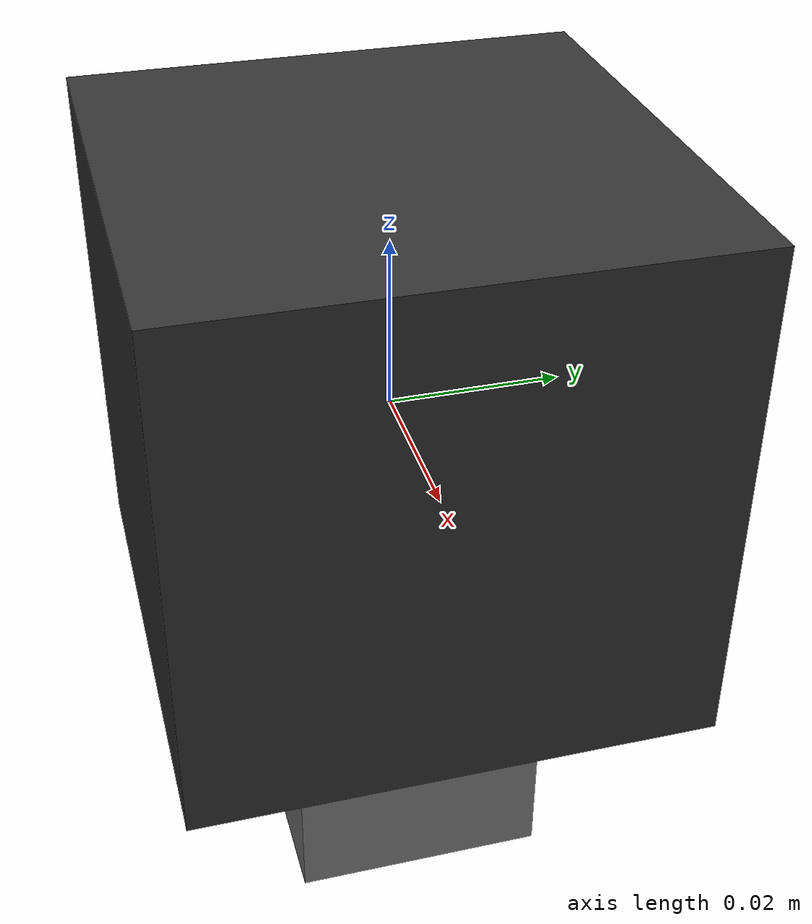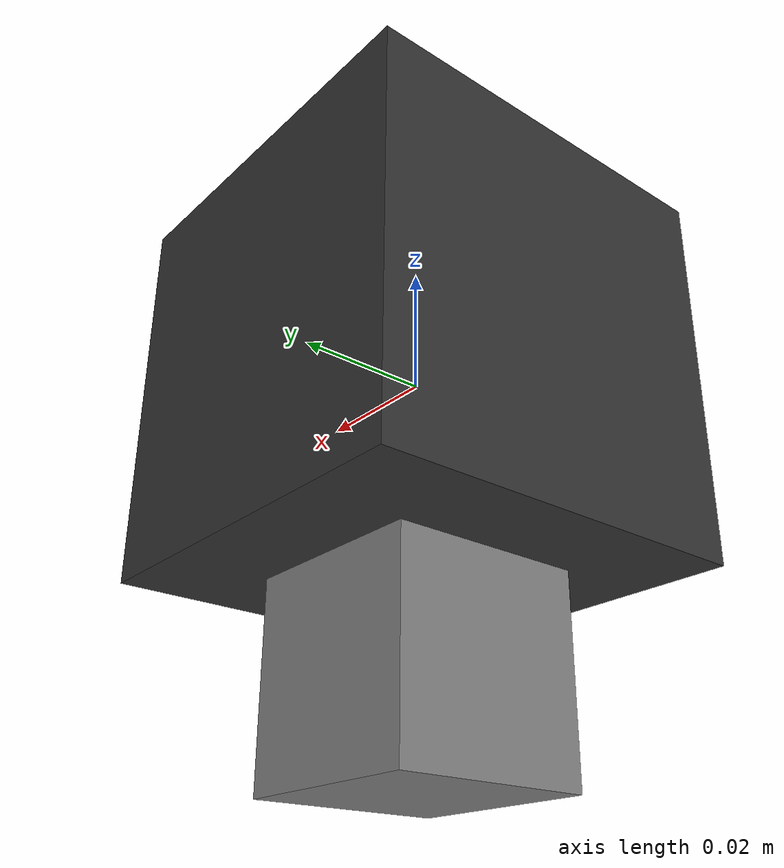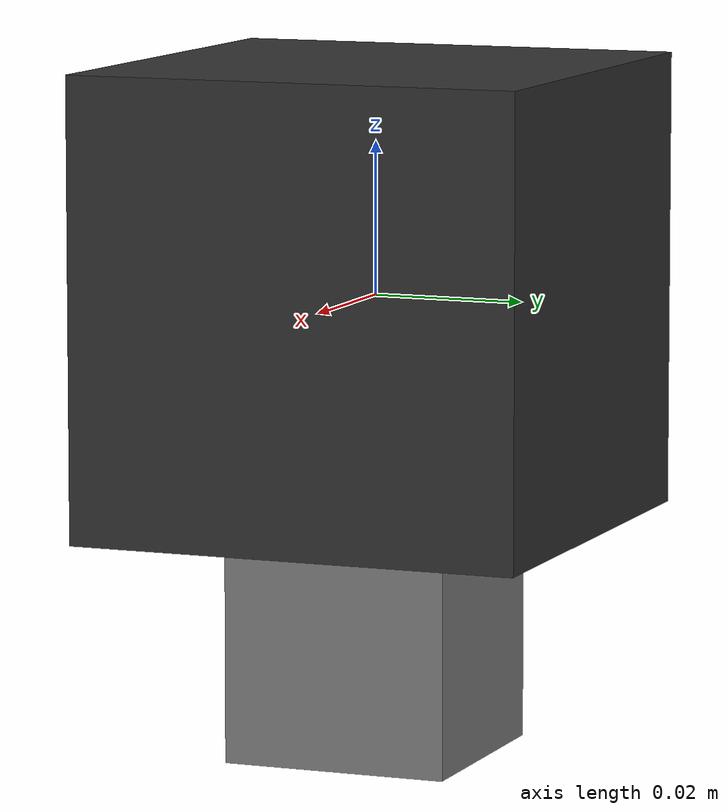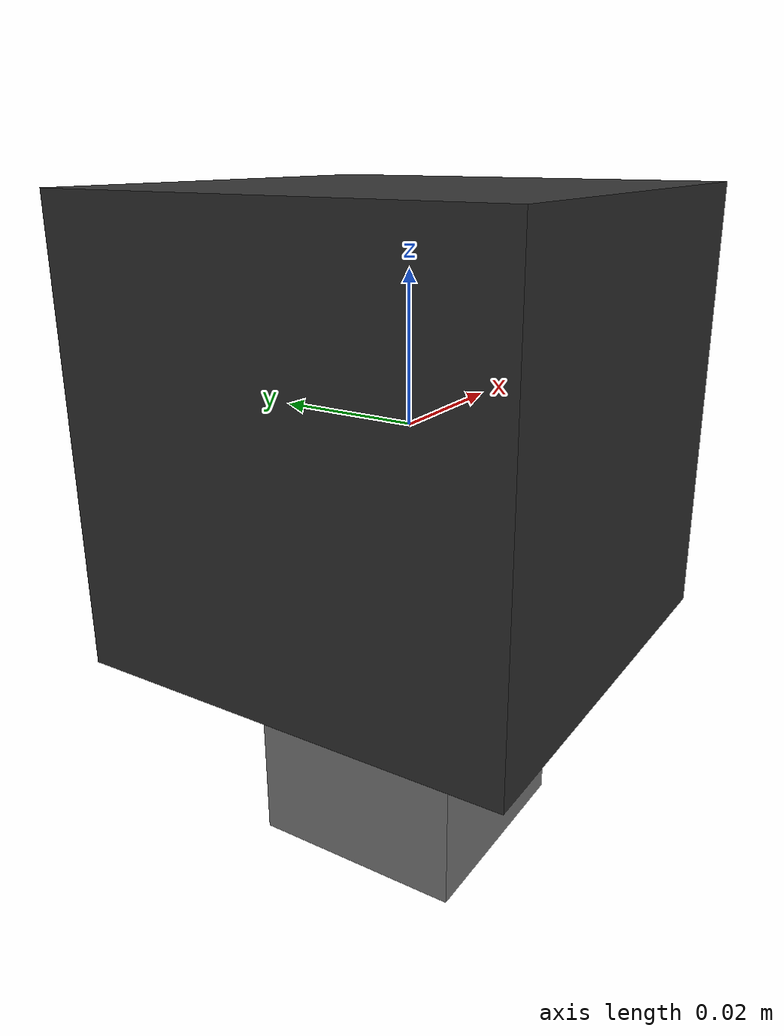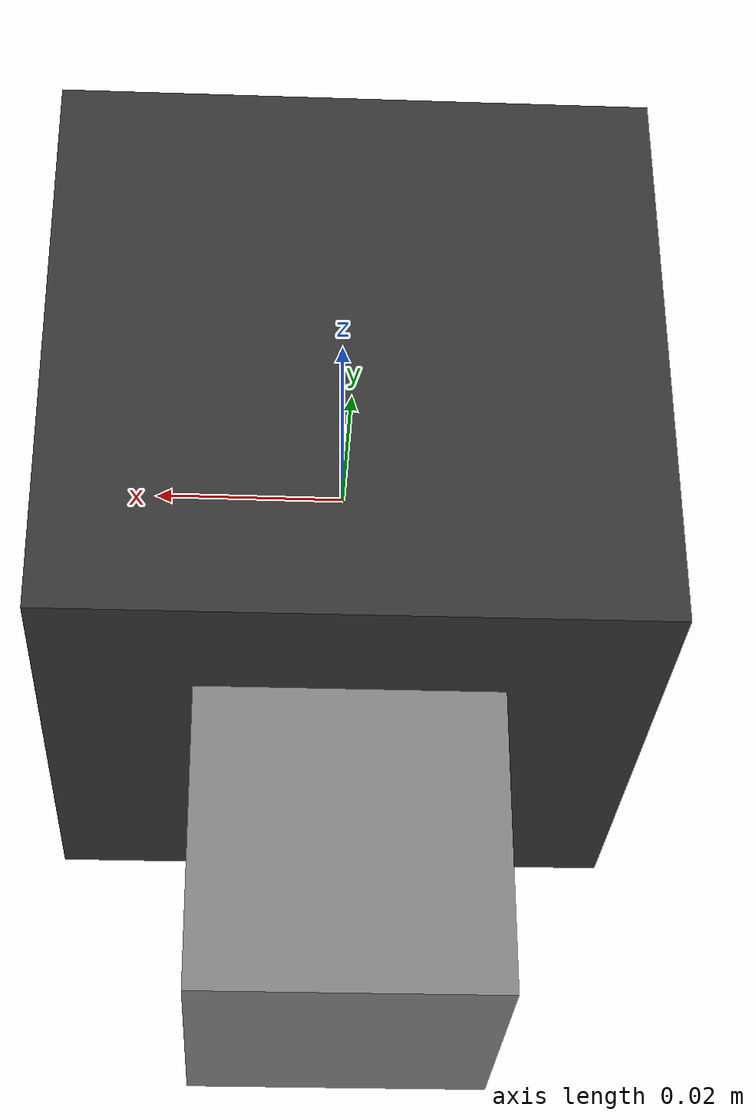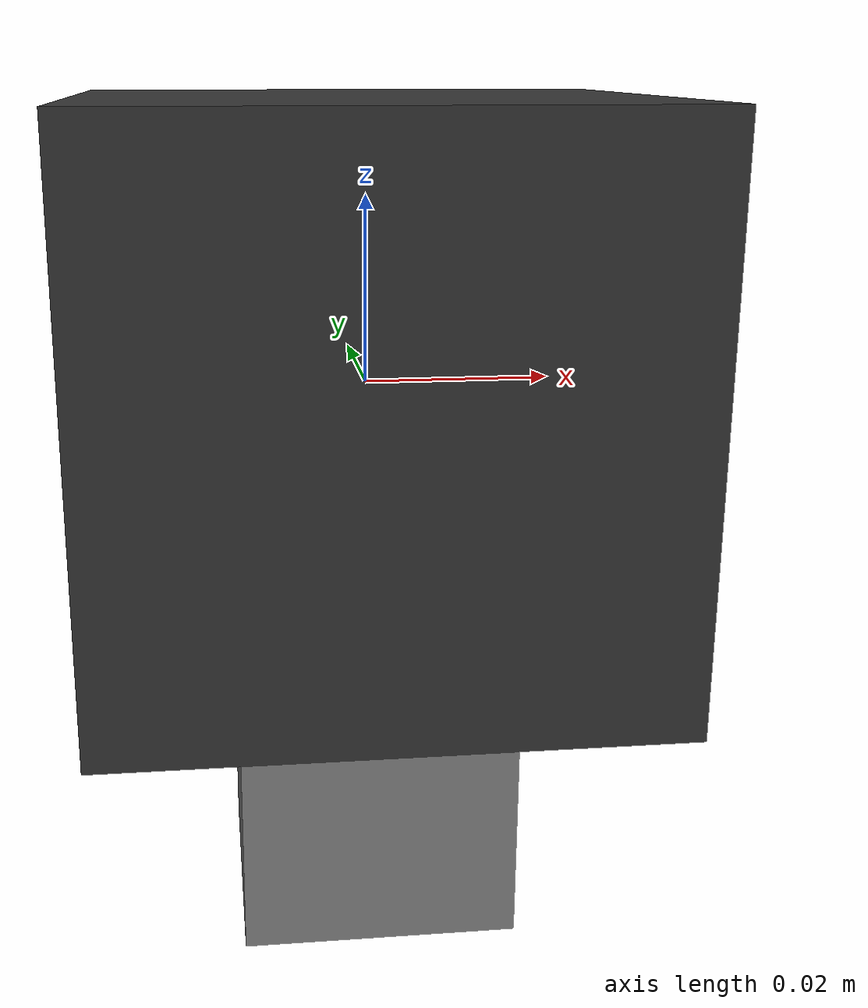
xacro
<?xml version="1.0"?>
<robot xmlns:xacro="http://www.ros.org/wiki/xacro" name="fixed_camera">

    <!-- Properties -->
    <xacro:property name="body_size" value="0.06"/>
    <xacro:property name="body_mass" value="0.5"/>

    <xacro:property name="camera_size" value="0.03"/>
    <xacro:property name="camera_mass" value="0.05"/>

    <!-- Materials -->
    <material name="body_dark">
        <color rgba="0.2 0.2 0.2 1"/>
    </material>

    <material name="camera_gray">
        <color rgba="0.5 0.5 0.5 1"/>
    </material>

    <!-- Base link (camera mount body) -->
    <link name="camera_base_link">
        <inertial>
            <origin xyz="0 0 0" rpy="0 0 0"/>
            <mass value="${body_mass}"/>
            <inertia ixx="0.0001" ixy="0" ixz="0" iyy="0.0001" iyz="0" izz="0.0001"/>
        </inertial>
        <visual>
            <origin xyz="0 0 0" rpy="0 0 0"/>
            <geometry>
                <box size="${body_size} ${body_size} ${body_size}"/>
            </geometry>
            <material name="body_dark"/>
        </visual>
        <collision>
            <origin xyz="0 0 0" rpy="0 0 0"/>
            <geometry>
                <box size="${body_size} ${body_size} ${body_size}"/>
            </geometry>
        </collision>
    </link>

    <!-- Fixed in the air (no gravity) -->
    <gazebo reference="camera_base_link">
        <material>Gazebo/DarkGrey</material>
        <gravity>false</gravity>
        <static>true</static>
    </gazebo>

    <!-- Camera link (pointing down) -->
    <joint name="camera_joint" type="fixed">
        <parent link="camera_base_link"/>
        <child link="camera_link"/>
        <origin xyz="0 0 ${-body_size/2 - camera_size/2}" rpy="0 ${pi/2} 0"/>
    </joint>

    <link name="camera_link">
        <inertial>
            <origin xyz="0 0 0" rpy="0 0 0"/>
            <mass value="${camera_mass}"/>
            <inertia ixx="0.00001" ixy="0" ixz="0" iyy="0.00001" iyz="0" izz="0.00001"/>
        </inertial>
        <visual>
            <origin xyz="0 0 0" rpy="0 0 0"/>
            <geometry>
                <box size="${camera_size} ${camera_size} ${camera_size}"/>
            </geometry>
            <material name="camera_gray"/>
        </visual>
        <collision>
            <origin xyz="0 0 0" rpy="0 0 0"/>
            <geometry>
                <box size="${camera_size} ${camera_size} ${camera_size}"/>
            </geometry>
        </collision>
    </link>

    <gazebo reference="camera_link">
        <material>Gazebo/Grey</material>
        <sensor type="camera" name="fixed_camera">
            <update_rate>30.0</update_rate>
            <visualize>true</visualize>
            <camera name="fixed_camera">
                <horizontal_fov>1.396</horizontal_fov>
                <image>
                    <width>640</width>
                    <height>480</height>
                    <format>R8G8B8</format>
                </image>
                <clip>
                    <near>0.1</near>
                    <far>100</far>
                </clip>
                <noise>
                    <type>gaussian</type>
                    <mean>0.0</mean>
                    <stddev>0.007</stddev>
                </noise>
                <distortion>
                    <k1>-0.05</k1>
                    <k2>0.02</k2>
                    <k3>0.0</k3>
                    <p1>0.001</p1>
                    <p2>-0.001</p2>
                    <center>0.5 0.5</center>
                </distortion>
            </camera>
            <plugin name="camera_controller" filename="libgazebo_ros_camera.so">
                <ros>
                    <namespace>/fixed_camera</namespace>
                    <remapping>~/image_raw:=image_raw</remapping>
                    <remapping>~/camera_info:=camera_info</remapping>
                </ros>
                <camera_name>camera</camera_name>
                <frame_name>camera_link_optical</frame_name>
                <hack_baseline>0.0</hack_baseline>
            </plugin>
        </sensor>
    </gazebo>

    <!-- Optical frame: Z forward, X right, Y down (ROS camera convention) -->
    <joint name="camera_optical_joint" type="fixed">
        <parent link="camera_link"/>
        <child link="camera_link_optical"/>
        <origin xyz="0 0 0" rpy="${-pi/2} 0 ${-pi/2}"/>
    </joint>

    <link name="camera_link_optical"/>

</robot>
